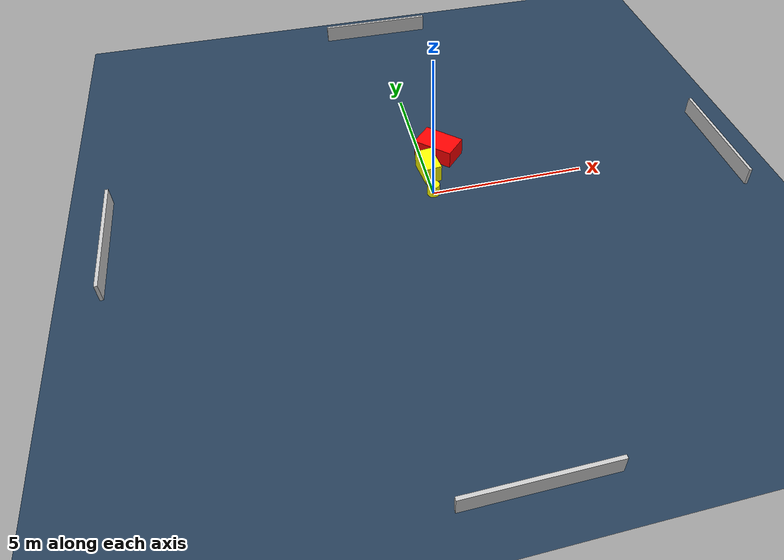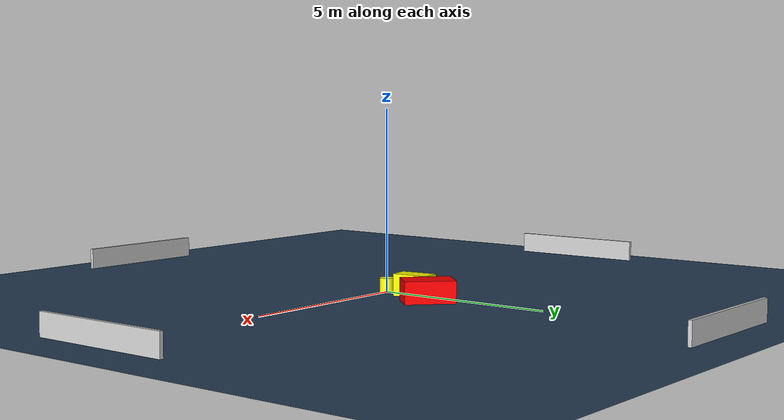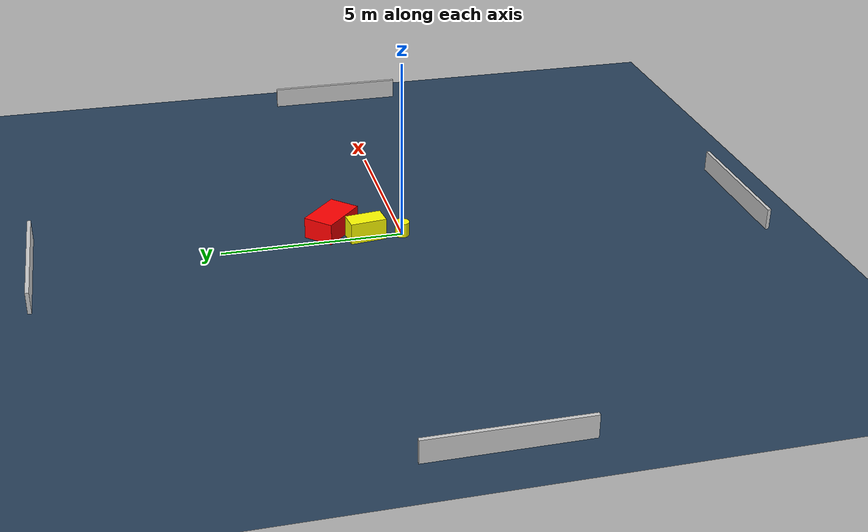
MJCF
<?xml version="1.0" ?>
<mujoco model="generated_environment">
  <option timestep="0.01" integrator="RK4" cone="elliptic"/>
  <default>
    <geom density="1"/>
  </default>
  <asset>
    <texture builtin="gradient" height="3072" name="skybox" rgb1="0.3 0.5 0.7" rgb2="0 0 0" type="skybox" width="512"/>
    <texture builtin="checker" height="300" name="groundplane" rgb1="0.2 0.3 0.4" rgb2="0.1 0.2 0.3" type="2d" width="300"/>
    <material name="groundplane" reflectance="0.2" texrepeat="5 5" texture="groundplane"/>
  </asset>
  <worldbody>
    <light dir="0 0 -1" directional="true" pos="0 0 1.5"/>
    <geom condim="3" friction="0.5 0.005 0.001" material="groundplane" name="floor" pos="0 0 0" size="0 0 0.05" type="plane"/>
    <body name="walls">
      <geom name="wall_1" condim="4" pos="-10.0 0.0 0.3" rgba="0.800000011920929 0.800000011920929 0.800000011920929 1.0" size="0.05 2.0 0.3" type="box"/>
      <geom name="wall_2" condim="4" pos="10.0 0.0 0.3" rgba="0.800000011920929 0.800000011920929 0.800000011920929 1.0" size="0.05 2.0 0.3" type="box"/>
      <geom name="wall_3" condim="4" pos="0.0 -10.0 0.3" rgba="0.800000011920929 0.800000011920929 0.800000011920929 1.0" size="2.0 0.05 0.3" type="box"/>
      <geom name="wall_4" condim="4" pos="0.0 10.0 0.3" rgba="0.800000011920929 0.800000011920929 0.800000011920929 1.0" size="2.0 0.05 0.3" type="box"/>
    </body>
    <body name="robot">
      <joint name="joint_x" type="slide" pos="0 0 0" axis="1 0 0"/>
      <joint name="joint_y" type="slide" pos="0 0 0" axis="0 1 0"/>
      <geom name="robot" type="cylinder" pos="0.0 0.0 0.2" size="0.2 0.2 0.0" mass="5.0" friction="1.0 0.005 0.0001" condim="4" rgba="1.0 1.0 0.0 1.0"/>
    </body>
    <body name="obstacle_1_movable">
      <geom name="obstacle_1_movable" condim="4" pos="0.07697715191192397 1.0088027146256187 0.3" euler="0 0 96.83582890353162" friction="0.0 0.005 0.001" rgba="1.0 1.0 0.0 1.0" size="0.5057524253098196 0.27645811649603635 0.3" type="box" mass="0.1"/>
      <joint type="free"/>
    </body>
    <body name="obstacle_2_static">
      <geom name="obstacle_2_static" condim="4" pos="0.6266390290523767 1.867640653991878 0.3" euler="0 0 136.62500842549784" friction="0.0 0.005 0.001" rgba="1.0 0.0 0.0 1.0" size="0.6775443422759346 0.4353472357812862 0.3" type="box"/>
    </body>
  </worldbody>
  <actuator>
    <motor name="actuator_x" joint="joint_x" gear="1" ctrlrange="-1 1"/>
    <motor name="actuator_y" joint="joint_y" gear="1" ctrlrange="-1 1"/>
  </actuator>
</mujoco>
